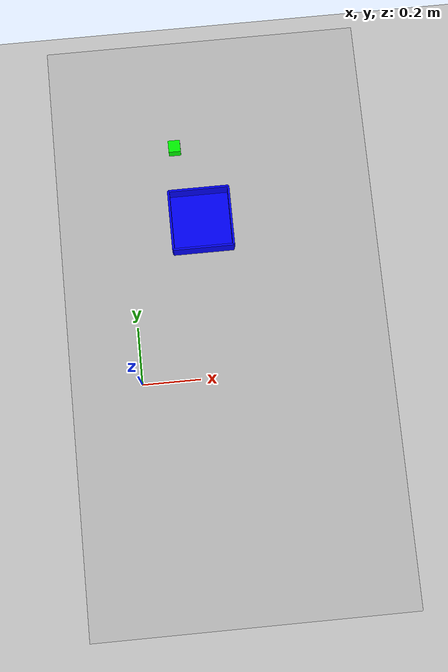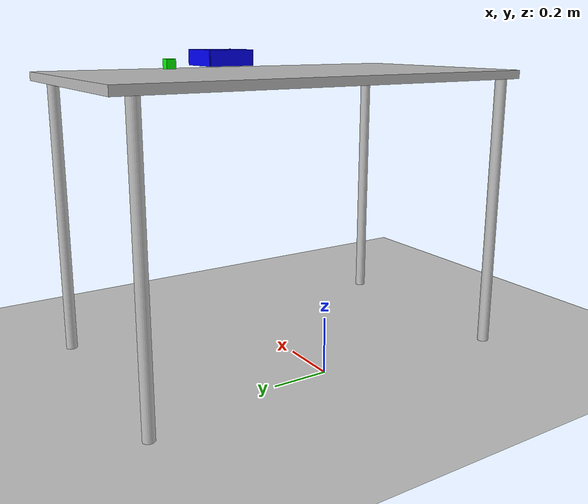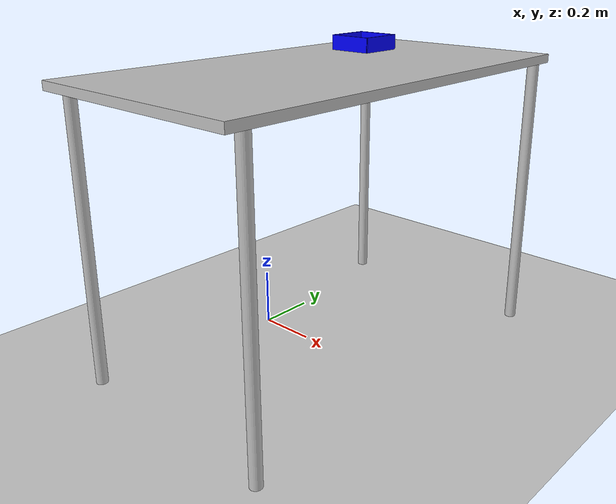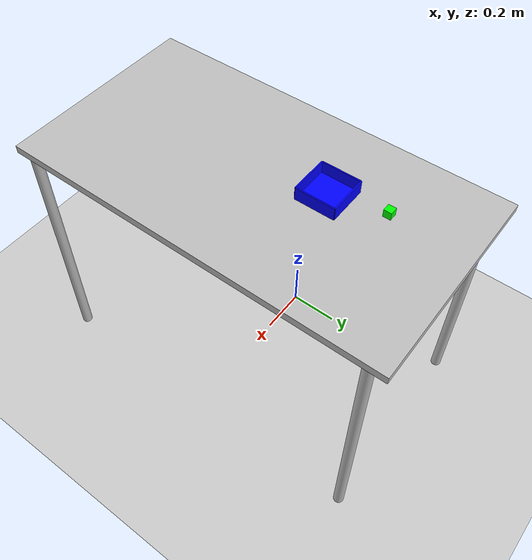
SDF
<?xml version="1.0"?>
<sdf version="1.6">
  <world name="arm_on_the_table">
    <scene>
      <shadows>true</shadows>
      <ambient>0.8 0.8 0.8 0.8</ambient>
      <background>0.8 0.8 0.8 0.8</background>
    </scene>

    <gui>
      <camera name="user_camera">
        <pose>0.75 -0.75 1.4 0 0.29 2.21</pose>
      </camera>
    </gui>

    <include>
      <uri>model://sun</uri>
    </include>

    <model name="table">
      <static>true</static>
      <include>
        <uri>model://table</uri>
      </include>
      <pose>0.29 0 0 0 0 1.5708</pose>
    </model>

    <model name="ground_plane">
      <static>true</static>
      <include>
        <uri>model://ground_plane</uri>
      </include>
    </model>

    <include>
      <uri>model://cube</uri>
      <name>cube_model</name>
      <pose>0.2 0.45 1.05 0 0 0</pose>
    </include>
    <include>
      <uri>model://box</uri>
      <name>box_model</name>
      <pose>0.25 0.25 1.04 0 0 0</pose>
    </include>
  </world>
</sdf>

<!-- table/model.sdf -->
<sdf version="1.5">
  <model name="table">
    <static>true</static>
    <link name="link">
      <collision name="surface">
        <pose>0 0 1.0 0 0 0</pose>
        <geometry>
          <box>
            <size>1.5 0.8 0.03</size>
          </box>
        </geometry>
        <surface>
          <friction>
            <ode>
              <mu>0.6</mu>
              <mu2>0.6</mu2>
            </ode>
          </friction>
        </surface>
      </collision>
      <visual name="visual1">
        <pose>0 0 1.0 0 0 0</pose>
        <geometry>
          <box>
            <size>1.5 0.8 0.03</size>
          </box>
        </geometry>
        <material>
          <!-- 手写 Gazebo/Grey：精确匹配 -->
          <ambient>0.75 0.75 0.75 1</ambient>
          <diffuse>0.75 0.75 0.75 1</diffuse>
          <specular>0.18 0.18 0.18 1</specular>
          <shininess>24</shininess>
          <emissive>0 0 0 1</emissive>
        </material>
      </visual>

      <collision name="front_left_leg">
        <pose>0.68 0.38 0.5 0 0 0</pose>
        <geometry>
          <cylinder>
            <radius>0.02</radius>
            <length>1.0</length>
          </cylinder>
        </geometry>
      </collision>
      <visual name="front_left_leg">
        <pose>0.68 0.38 0.5 0 0 0</pose>
        <geometry>
          <cylinder>
            <radius>0.02</radius>
            <length>1.0</length>
          </cylinder>
        </geometry>
        <material>
          <!-- 手写 Gazebo/Grey：精确匹配 -->
          <ambient>0.75 0.75 0.75 1</ambient>
          <diffuse>0.75 0.75 0.75 1</diffuse>
          <specular>0.18 0.18 0.18 1</specular>
          <shininess>24</shininess>
          <emissive>0 0 0 1</emissive>
        </material>
      </visual>

      <collision name="front_right_leg">
        <pose>0.68 -0.38 0.5 0 0 0</pose>
        <geometry>
          <cylinder>
            <radius>0.02</radius>
            <length>1.0</length>
          </cylinder>
        </geometry>
      </collision>
       <visual name="front_right_leg">
        <pose>0.68 -0.38 0.5 0 0 0</pose>
        <geometry>
          <cylinder>
            <radius>0.02</radius>
            <length>1.0</length>
          </cylinder>
        </geometry>
        <material>
          <!-- 手写 Gazebo/Grey -->
          <ambient>0.75 0.75 0.75 1</ambient>
          <diffuse>0.75 0.75 0.75 1</diffuse>
          <specular>0.18 0.18 0.18 1</specular>
          <shininess>24</shininess>
          <emissive>0 0 0 1</emissive>
        </material>
      </visual>

      <collision name="back_right_leg">
        <pose>-0.68 -0.38 0.5 0 0 0</pose>
        <geometry>
          <cylinder>
            <radius>0.02</radius>
            <length>1.0</length>
          </cylinder>
        </geometry>
      </collision>
      <visual name="back_right_leg">
        <pose>-0.68 -0.38 0.5 0 0 0</pose>
        <geometry>
          <cylinder>
            <radius>0.02</radius>
            <length>1.0</length>
          </cylinder>
        </geometry>
        <material>
          <!-- 手写 Gazebo/Grey -->
          <ambient>0.75 0.75 0.75 1</ambient>
          <diffuse>0.75 0.75 0.75 1</diffuse>
          <specular>0.18 0.18 0.18 1</specular>
          <shininess>24</shininess>
          <emissive>0 0 0 1</emissive>
        </material>
      </visual>

      <collision name="back_left_leg">
        <pose>-0.68 0.38 0.5 0 0 0</pose>
        <geometry>
          <cylinder>
            <radius>0.02</radius>
            <length>1.0</length>
          </cylinder>
        </geometry>
      </collision>
       <visual name="back_left_leg">
        <pose>-0.68 0.38 0.5 0 0 0</pose>
        <geometry>
          <cylinder>
            <radius>0.02</radius>
            <length>1.0</length>
          </cylinder>
        </geometry>
        <material>
          <!-- 手写 Gazebo/Grey -->
          <ambient>0.75 0.75 0.75 1</ambient>
          <diffuse>0.75 0.75 0.75 1</diffuse>
          <specular>0.18 0.18 0.18 1</specular>
          <shininess>24</shininess>
          <emissive>0 0 0 1</emissive>
        </material>
      </visual>

    </link>
  </model>
</sdf>

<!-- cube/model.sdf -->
<sdf version="1.7">
  <model name="cube">
    <static>false</static>
    <self_collide>false</self_collide>
    <allow_auto_disable>false</allow_auto_disable>

    <link name="box_link">
      <gravity>true</gravity>
      <enable_wind>false</enable_wind>

      <inertial>
        <mass>0.08</mass>
        <inertia>
          <ixx>1.2e-5</ixx>
          <iyy>1.2e-5</iyy>
          <izz>1.2e-5</izz>
          <ixy>0.0</ixy>
          <ixz>0.0</ixz>
          <iyz>0.0</iyz>
        </inertia>
      </inertial>

      <velocity_decay>
        <linear>0.08</linear>
        <angular>0.12</angular>
      </velocity_decay>

      <collision name="box_collision">
        <geometry>
          <box>
            <size>0.03 0.03 0.03</size>
          </box>
        </geometry>
        <surface>
          <friction>
            <ode>
              <mu>0.08</mu>
              <mu2>0.08</mu2>
            </ode>
          </friction>
          <contact>
            <ode/>
          </contact>
        </surface>
      </collision>

      <visual name="box_visual">
        <geometry>
          <box>
            <size>0.03 0.03 0.03</size>
          </box>
        </geometry>
        <material>
          <ambient>0 1 0 1</ambient>
          <diffuse>0 1 0 1</diffuse>
          <specular>0.1 0.1 0.1 1</specular>
        </material>
      </visual>
    </link>

    <plugin
      filename="ignition-gazebo-velocity-control-system"
      name="ignition::gazebo::systems::VelocityControl">
      <topic>/model/cube_model/cmd_vel</topic>
      <initial_linear>0.0 0.0 0.0</initial_linear>
      <initial_angular>0.0 0.0 0.0</initial_angular>
    </plugin>
  </model>
</sdf>

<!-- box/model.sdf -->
<sdf version="1.7">
  <model name="box">
    <static>true</static>
    <link name="base_link">
      <collision name="base_collision">
        <pose>0 0 0.0025 0 0 0</pose>
        <geometry><box><size>0.15 0.15 0.005</size></box></geometry>
      </collision>
      <visual name="base_visual">
        <pose>0 0 0.0025 0 0 0</pose>
        <geometry><box><size>0.15 0.15 0.005</size></box></geometry>
        <material><ambient>0 0 1 1</ambient><diffuse>0 0 1 1</diffuse></material>
      </visual>
    </link>
    <link name="walls">
      <visual name="front"><pose>0 -0.075 0.025 0 0 0</pose><geometry><box><size>0.15 0.005 0.05</size></box></geometry><material><ambient>0 0 1 1</ambient><diffuse>0 0 1 1</diffuse></material></visual>
      <visual name="back"><pose>0 0.075 0.025 0 0 0</pose><geometry><box><size>0.15 0.005 0.05</size></box></geometry><material><ambient>0 0 1 1</ambient><diffuse>0 0 1 1</diffuse></material></visual>
      <visual name="left"><pose>-0.075 0 0.025 0 0 0</pose><geometry><box><size>0.005 0.15 0.05</size></box></geometry><material><ambient>0 0 1 1</ambient><diffuse>0 0 1 1</diffuse></material></visual>
      <visual name="right"><pose>0.075 0 0.025 0 0 0</pose><geometry><box><size>0.005 0.15 0.05</size></box></geometry><material><ambient>0 0 1 1</ambient><diffuse>0 0 1 1</diffuse></material></visual>
      <collision name="front"><pose>0 -0.075 0.025 0 0 0</pose><geometry><box><size>0.15 0.005 0.05</size></box></geometry></collision>
      <collision name="back"><pose>0 0.075 0.025 0 0 0</pose><geometry><box><size>0.15 0.005 0.05</size></box></geometry></collision>
      <collision name="left"><pose>-0.075 0 0.025 0 0 0</pose><geometry><box><size>0.005 0.15 0.05</size></box></geometry></collision>
      <collision name="right"><pose>0.075 0 0.025 0 0 0</pose><geometry><box><size>0.005 0.15 0.05</size></box></geometry></collision>
    </link>
    <joint name="walls_fixed" type="fixed">
      <parent>base_link</parent>
      <child>walls</child>
    </joint>
  </model>
</sdf>
